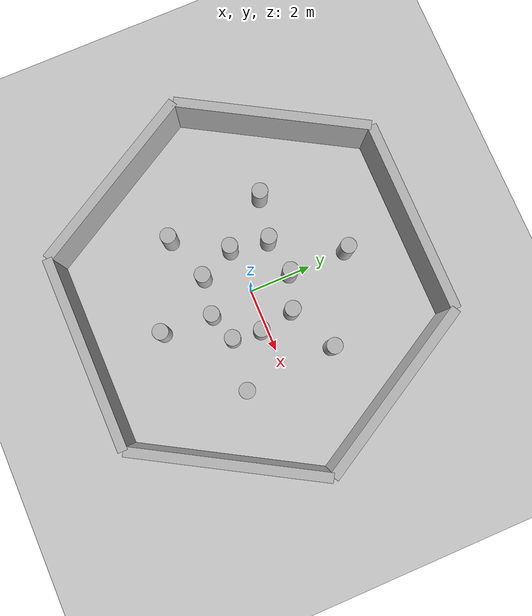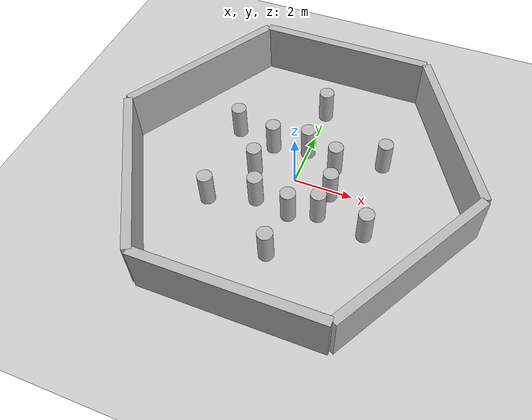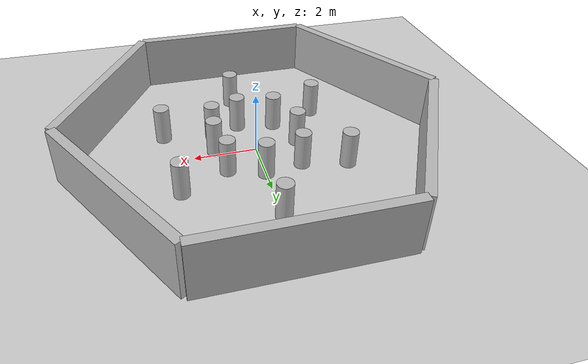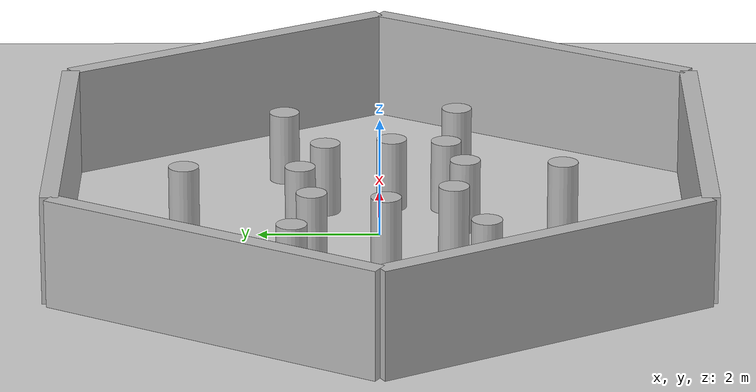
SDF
<?xml version="1.0"?>
<sdf version="1.9">
  <world name="empty_world">
    <physics name="1ms" type="ignored">
      <max_step_size>0.001</max_step_size>
      <real_time_update_rate>1000</real_time_update_rate>
      <real_time_factor>1.0</real_time_factor>
    </physics>

    <plugin filename="gz-sim-physics-system" name="gz::sim::systems::Physics"/>
    <plugin filename="gz-sim-user-commands-system" name="gz::sim::systems::UserCommands"/>
    <plugin filename="gz-sim-scene-broadcaster-system" name="gz::sim::systems::SceneBroadcaster"/>
    <plugin filename="gz-sim-contact-system" name="gz::sim::systems::Contact"/>
    <plugin filename="gz-sim-sensors-system" name="gz::sim::systems::Sensors">
      <render_engine>ogre2</render_engine>
    </plugin>

    <light type="directional" name="sun">
      <cast_shadows>true</cast_shadows>
      <pose>0 0 10 0 0 0</pose>
      <diffuse>0.8 0.8 0.8 1</diffuse>
      <specular>0.2 0.2 0.2 1</specular>
      <attenuation>
        <range>1000</range>
        <constant>0.9</constant>
        <linear>0.01</linear>
        <quadratic>0.001</quadratic>
      </attenuation>
      <direction>-0.5 0.1 -0.9</direction>
    </light>

    <model name="ground_plane">
      <static>true</static>
      <link name="link">
        <collision name="collision">
          <geometry>
            <plane>
              <normal>0 0 1</normal>
              <size>100 100</size>
            </plane>
          </geometry>
        </collision>
        <visual name="visual">
          <geometry>
            <plane>
              <normal>0 0 1</normal>
              <size>100 100</size>
            </plane>
          </geometry>
          <material>
            <ambient>0.8 0.8 0.8 1</ambient>
            <diffuse>0.8 0.8 0.8 1</diffuse>
            <specular>0.8 0.8 0.8 1</specular>
          </material>
        </visual>
      </link>
    </model>

    <!-- Hexagon walls -->

    <!-- wall 0 -->
    <model name="wall_0">
      <static>true</static>
      <pose>0 5.2 0.9 0 0 0</pose>
      <link name="link">
        <collision name="c">
          <geometry>
            <box>
              <size>6 0.3 1.8</size>
            </box>
          </geometry>
        </collision>
        <visual name="v">
          <geometry>
            <box>
              <size>6 0.3 1.8</size>
            </box>
          </geometry>
        </visual>
      </link>
    </model>

    <!-- wall 1 -->
    <model name="wall_1">
      <static>true</static>
      <pose>-4.5 2.6 0.9 0 0 1.0472</pose>
      <link name="link">
        <collision name="c">
          <geometry>
            <box>
              <size>6 0.3 1.8</size>
            </box>
          </geometry>
        </collision>
        <visual name="v">
          <geometry>
            <box>
              <size>6 0.3 1.8</size>
            </box>
          </geometry>
        </visual>
      </link>
    </model>

    <!-- wall 2 -->
    <model name="wall_2">
      <static>true</static>
      <pose>-4.5 -2.6 0.9 0 0 2.0944</pose>
      <link name="link">
        <collision name="c">
          <geometry>
            <box>
              <size>6 0.3 1.8</size>
            </box>
          </geometry>
        </collision>
        <visual name="v">
          <geometry>
            <box>
              <size>6 0.3 1.8</size>
            </box>
          </geometry>
        </visual>
      </link>
    </model>

    <!-- wall 3 -->
    <model name="wall_3">
      <static>true</static>
      <pose>0 -5.2 0.9 0 0 3.1416</pose>
      <link name="link">
        <collision name="c">
          <geometry>
            <box>
              <size>6 0.3 1.8</size>
            </box>
          </geometry>
        </collision>
        <visual name="v">
          <geometry>
            <box>
              <size>6 0.3 1.8</size>
            </box>
          </geometry>
        </visual>
      </link>
    </model>

    <!-- wall 4 -->
    <model name="wall_4">
      <static>true</static>
      <pose>4.5 -2.6 0.9 0 0 -2.0944</pose>
      <link name="link">
        <collision name="c">
          <geometry>
            <box>
              <size>6 0.3 1.8</size>
            </box>
          </geometry>
        </collision>
        <visual name="v">
          <geometry>
            <box>
              <size>6 0.3 1.8</size>
            </box>
          </geometry>
        </visual>
      </link>
    </model>

    <!-- wall 5 -->
    <model name="wall_5">
      <static>true</static>
      <pose>4.5 2.6 0.9 0 0 -1.0472</pose>
      <link name="link">
        <collision name="c">
          <geometry>
            <box>
              <size>6 0.3 1.8</size>
            </box>
          </geometry>
        </collision>
        <visual name="v">
          <geometry>
            <box>
              <size>6 0.3 1.8</size>
            </box>
          </geometry>
        </visual>
      </link>
    </model>

    <!-- Inner cylindrical obstacles -->

    <model name="pillar_c1">
      <static>true</static>
      <pose>-1.2 1.1 0.6 0 0 0</pose>
      <link name="link">
        <collision name="c">
          <geometry>
            <cylinder>
              <radius>0.25</radius>
              <length>1.2</length>
            </cylinder>
          </geometry>
        </collision>
        <visual name="v">
          <geometry>
            <cylinder>
              <radius>0.25</radius>
              <length>1.2</length>
            </cylinder>
          </geometry>
        </visual>
      </link>
    </model>

    <model name="pillar_c2">
      <static>true</static>
      <pose>0.0 1.3 0.6 0 0 0</pose>
      <link name="link">
        <collision name="c">
          <geometry>
            <cylinder>
              <radius>0.25</radius>
              <length>1.2</length>
            </cylinder>
          </geometry>
        </collision>
        <visual name="v">
          <geometry>
            <cylinder>
              <radius>0.25</radius>
              <length>1.2</length>
            </cylinder>
          </geometry>
        </visual>
      </link>
    </model>

    <model name="pillar_c3">
      <static>true</static>
      <pose>1.1 0.9 0.6 0 0 0</pose>
      <link name="link">
        <collision name="c">
          <geometry>
            <cylinder>
              <radius>0.25</radius>
              <length>1.2</length>
            </cylinder>
          </geometry>
        </collision>
        <visual name="v">
          <geometry>
            <cylinder>
              <radius>0.25</radius>
              <length>1.2</length>
            </cylinder>
          </geometry>
        </visual>
      </link>
    </model>

    <model name="pillar_c4">
      <static>true</static>
      <pose>-1.4 -0.1 0.6 0 0 0</pose>
      <link name="link">
        <collision name="c">
          <geometry>
            <cylinder>
              <radius>0.25</radius>
              <length>1.2</length>
            </cylinder>
          </geometry>
        </collision>
        <visual name="v">
          <geometry>
            <cylinder>
              <radius>0.25</radius>
              <length>1.2</length>
            </cylinder>
          </geometry>
        </visual>
      </link>
    </model>

    <model name="pillar_c6">
      <static>true</static>
      <pose>1.3 -0.2 0.6 0 0 0</pose>
      <link name="link">
        <collision name="c">
          <geometry>
            <cylinder>
              <radius>0.25</radius>
              <length>1.2</length>
            </cylinder>
          </geometry>
        </collision>
        <visual name="v">
          <geometry>
            <cylinder>
              <radius>0.25</radius>
              <length>1.2</length>
            </cylinder>
          </geometry>
        </visual>
      </link>
    </model>

    <model name="pillar_c7">
      <static>true</static>
      <pose>-0.9 -1.2 0.6 0 0 0</pose>
      <link name="link">
        <collision name="c">
          <geometry>
            <cylinder>
              <radius>0.25</radius>
              <length>1.2</length>
            </cylinder>
          </geometry>
        </collision>
        <visual name="v">
          <geometry>
            <cylinder>
              <radius>0.25</radius>
              <length>1.2</length>
            </cylinder>
          </geometry>
        </visual>
      </link>
    </model>

    <model name="pillar_c8">
      <static>true</static>
      <pose>0.3 -1.4 0.6 0 0 0</pose>
      <link name="link">
        <collision name="c">
          <geometry>
            <cylinder>
              <radius>0.25</radius>
              <length>1.2</length>
            </cylinder>
          </geometry>
        </collision>
        <visual name="v">
          <geometry>
            <cylinder>
              <radius>0.25</radius>
              <length>1.2</length>
            </cylinder>
          </geometry>
        </visual>
      </link>
    </model>

    <model name="pillar_c9">
      <static>true</static>
      <pose>1.2 -1.1 0.6 0 0 0</pose>
      <link name="link">
        <collision name="c">
          <geometry>
            <cylinder>
              <radius>0.25</radius>
              <length>1.2</length>
            </cylinder>
          </geometry>
        </collision>
        <visual name="v">
          <geometry>
            <cylinder>
              <radius>0.25</radius>
              <length>1.2</length>
            </cylinder>
          </geometry>
        </visual>
      </link>
    </model>

    <!-- Inner pillars: outer disturbed -->

    <model name="pillar_o1">
      <static>true</static>
      <pose>0.0 3.2 0.6 0 0 0</pose>
      <link name="link">
        <collision name="c">
          <geometry>
            <cylinder>
              <radius>0.25</radius>
              <length>1.2</length>
            </cylinder>
          </geometry>
        </collision>
        <visual name="v">
          <geometry>
            <cylinder>
              <radius>0.25</radius>
              <length>1.2</length>
            </cylinder>
          </geometry>
        </visual>
      </link>
    </model>

    <model name="pillar_o2">
      <static>true</static>
      <pose>2.6 1.6 0.6 0 0 0</pose>
      <link name="link">
        <collision name="c">
          <geometry>
            <cylinder>
              <radius>0.25</radius>
              <length>1.2</length>
            </cylinder>
          </geometry>
        </collision>
        <visual name="v">
          <geometry>
            <cylinder>
              <radius>0.25</radius>
              <length>1.2</length>
            </cylinder>
          </geometry>
        </visual>
      </link>
    </model>

    <model name="pillar_o3">
      <static>true</static>
      <pose>2.8 -1.3 0.6 0 0 0</pose>
      <link name="link">
        <collision name="c">
          <geometry>
            <cylinder>
              <radius>0.25</radius>
              <length>1.2</length>
            </cylinder>
          </geometry>
        </collision>
        <visual name="v">
          <geometry>
            <cylinder>
              <radius>0.25</radius>
              <length>1.2</length>
            </cylinder>
          </geometry>
        </visual>
      </link>
    </model>

    <model name="pillar_o4">
      <static>true</static>
      <pose>0.2 -3.0 0.6 0 0 0</pose>
      <link name="link">
        <collision name="c">
          <geometry>
            <cylinder>
              <radius>0.25</radius>
              <length>1.2</length>
            </cylinder>
          </geometry>
        </collision>
        <visual name="v">
          <geometry>
            <cylinder>
              <radius>0.25</radius>
              <length>1.2</length>
            </cylinder>
          </geometry>
        </visual>
      </link>
    </model>

    <model name="pillar_o5">
      <static>true</static>
      <pose>-2.4 -1.7 0.6 0 0 0</pose>
      <link name="link">
        <collision name="c">
          <geometry>
            <cylinder>
              <radius>0.25</radius>
              <length>1.2</length>
            </cylinder>
          </geometry>
        </collision>
        <visual name="v">
          <geometry>
            <cylinder>
              <radius>0.25</radius>
              <length>1.2</length>
            </cylinder>
          </geometry>
        </visual>
      </link>
    </model>

    <model name="pillar_o6">
      <static>true</static>
      <pose>-2.6 1.4 0.6 0 0 0</pose>
      <link name="link">
        <collision name="c">
          <geometry>
            <cylinder>
              <radius>0.25</radius>
              <length>1.2</length>
            </cylinder>
          </geometry>
        </collision>
        <visual name="v">
          <geometry>
            <cylinder>
              <radius>0.25</radius>
              <length>1.2</length>
            </cylinder>
          </geometry>
        </visual>
      </link>
    </model>

  </world>
</sdf>
